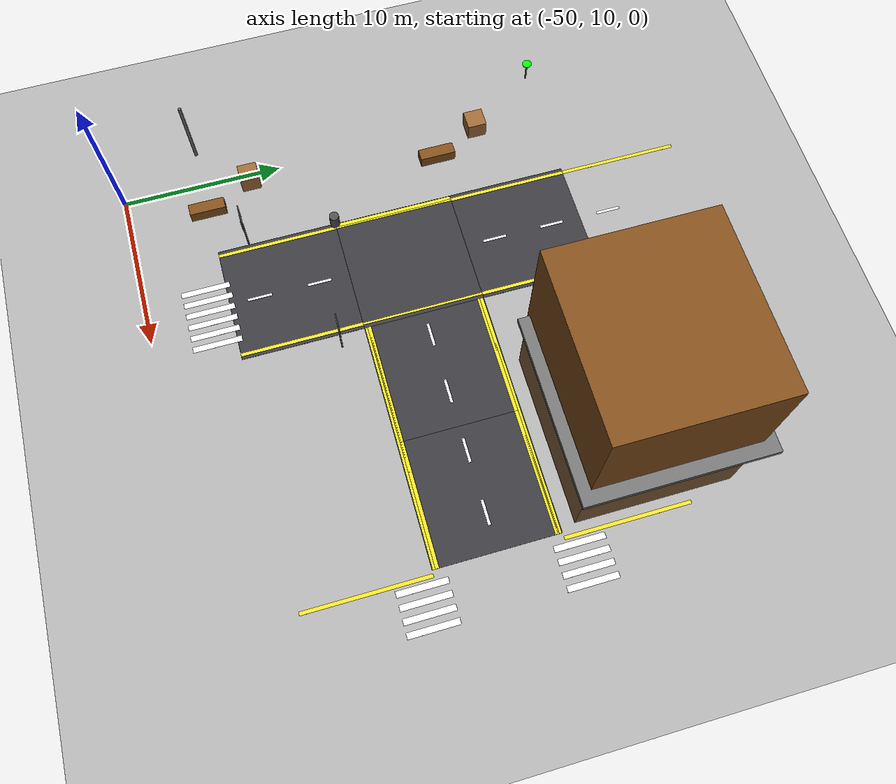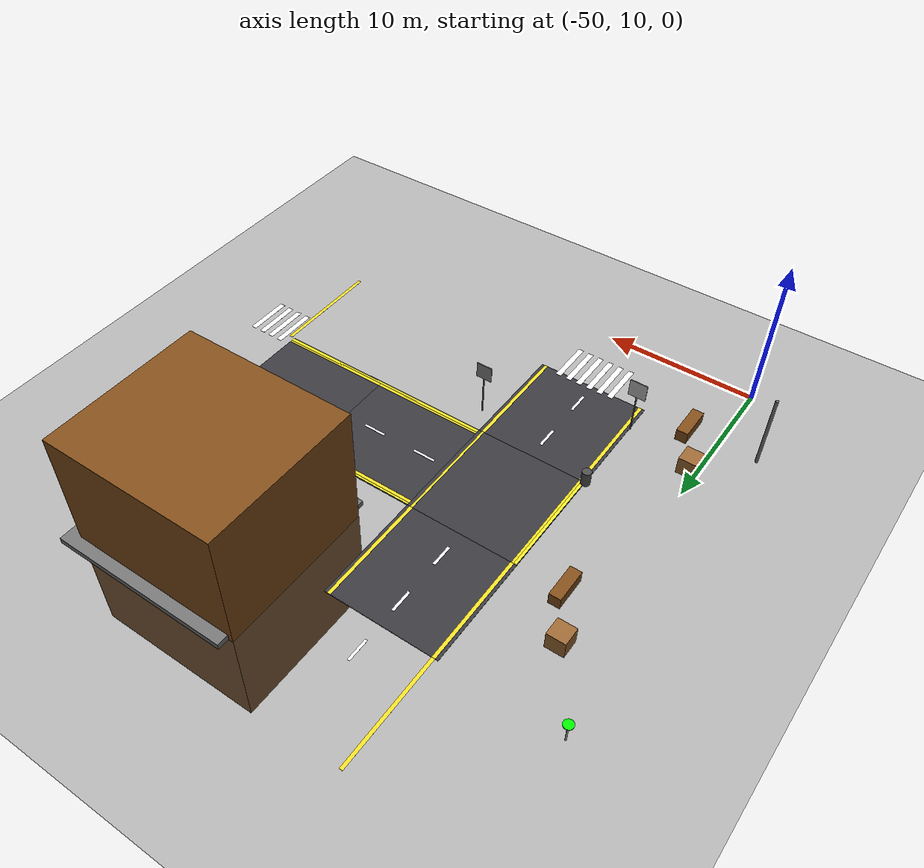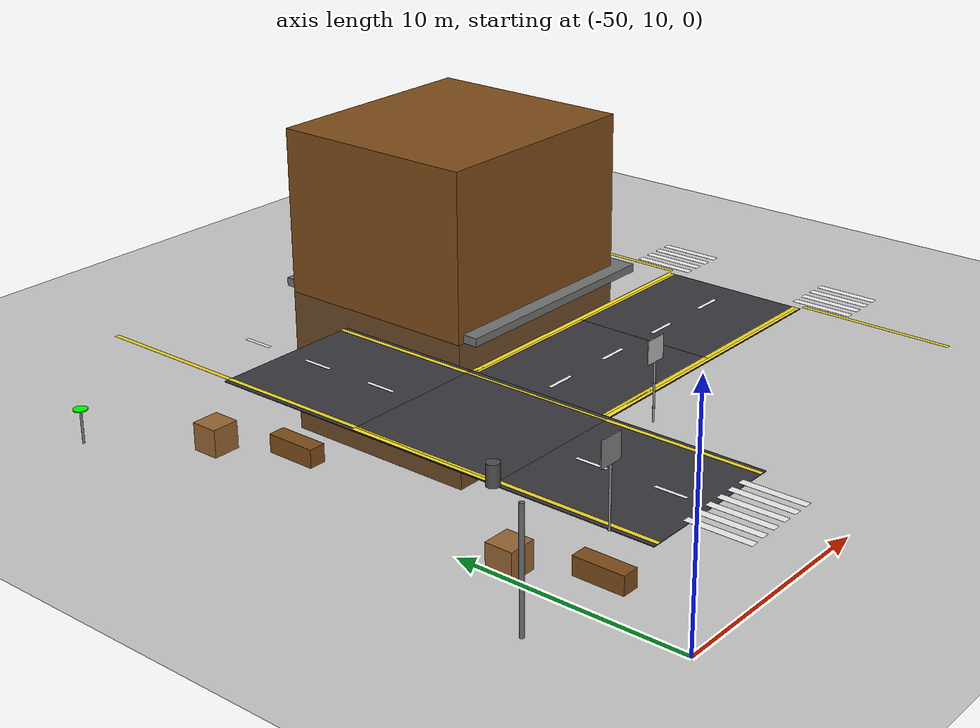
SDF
<sdf version="1.7">
 <world name="compact_city">
  <model name="ground_plane">
   <static>1</static>
   <pose>0 0 0.01 0 -0 0</pose>
   <link name="link">
    <collision name="collision">
     <geometry><plane><normal>0 0 1</normal><size>200 200</size></plane></geometry>
    </collision>
    <visual name="visual">
     <geometry><plane><normal>0 0 1</normal><size>200 200</size></plane></geometry>
     <material>
      <ambient>0.2 0.2 0.2 1</ambient>
      <diffuse>0.25 0.25 0.25 1</diffuse>
      <specular>0.1 0.1 0.1 1</specular>
     </material>
    </visual>
   </link>
  </model>
  <model name="road_tile_17">
   <static>1</static>
   <pose>-41.25 33.75 0.015 0 -0 1.5708</pose>
   <link name="link">
    <collision name="collision"><geometry><box><size>7.5 7.5 0.03</size></box></geometry></collision>
    <visual name="visual">
     <geometry><box><size>7.5 7.5 0.03</size></box></geometry>
     <material>
      <ambient>0.18 0.18 0.2 1</ambient>
      <diffuse>0.22 0.22 0.24 1</diffuse>
      <specular>0.1 0.1 0.1 1</specular>
     </material>
    </visual>
   </link>
  </model>
  <model name="road_tile_21">
   <static>1</static>
   <pose>-41.25 26.25 0.015 0 -0 0</pose>
   <link name="link">
    <collision name="collision"><geometry><box><size>7.5 7.5 0.03</size></box></geometry></collision>
    <visual name="visual">
     <geometry><box><size>7.5 7.5 0.03</size></box></geometry>
     <material>
      <ambient>0.18 0.18 0.2 1</ambient>
      <diffuse>0.22 0.22 0.24 1</diffuse>
      <specular>0.1 0.1 0.1 1</specular>
     </material>
    </visual>
   </link>
  </model>
  <model name="road_tile_22">
   <static>1</static>
   <pose>-33.75 26.25 0.015 0 -0 0</pose>
   <link name="link">
    <collision name="collision"><geometry><box><size>7.5 7.5 0.03</size></box></geometry></collision>
    <visual name="visual">
     <geometry><box><size>7.5 7.5 0.03</size></box></geometry>
     <material>
      <ambient>0.18 0.18 0.2 1</ambient>
      <diffuse>0.22 0.22 0.24 1</diffuse>
      <specular>0.1 0.1 0.1 1</specular>
     </material>
    </visual>
   </link>
  </model>
  <model name="road_tile_23">
   <static>1</static>
   <pose>-26.25 26.25 0.015 0 -0 0</pose>
   <link name="link">
    <collision name="collision"><geometry><box><size>7.5 7.5 0.03</size></box></geometry></collision>
    <visual name="visual">
     <geometry><box><size>7.5 7.5 0.03</size></box></geometry>
     <material>
      <ambient>0.18 0.18 0.2 1</ambient>
      <diffuse>0.22 0.22 0.24 1</diffuse>
      <specular>0.1 0.1 0.1 1</specular>
     </material>
    </visual>
   </link>
  </model>
  <model name="road_tile_33">
   <static>1</static>
   <pose>-41.25 18.75 0.015 0 -0 1.5708</pose>
   <link name="link">
    <collision name="collision"><geometry><box><size>7.5 7.5 0.03</size></box></geometry></collision>
    <visual name="visual">
     <geometry><box><size>7.5 7.5 0.03</size></box></geometry>
     <material>
      <ambient>0.18 0.18 0.2 1</ambient>
      <diffuse>0.22 0.22 0.24 1</diffuse>
      <specular>0.1 0.1 0.1 1</specular>
     </material>
    </visual>
   </link>
  </model>
  <model name="sidewalk_area_top_left">
   <static>1</static>
   <pose>-29.4168 37.5 0.2 0 -0 0</pose>
   <link name="link">
    <collision name="collision"><geometry><box><size>12 12 0.4</size></box></geometry></collision>
    <visual name="visual">
     <geometry><box><size>12 12 0.4</size></box></geometry>
     <material>
      <ambient>0.4 0.4 0.4 1</ambient>
      <diffuse>0.45 0.45 0.45 1</diffuse>
      <specular>0.2 0.2 0.2 1</specular>
     </material>
    </visual>
   </link>
  </model>
  <model name="el_141">
   <static>1</static>
   <pose>-44.7 18.75 0.038 0 -0 1.5708</pose>
   <link name="link">
    <visual name="v">
     <geometry><box><size>7.5 0.225 0.002</size></box></geometry>
     <material><ambient>0.9 0.8 0.1 1</ambient><diffuse>0.95 0.85 0.15 1</diffuse></material>
    </visual>
   </link>
  </model>
  <model name="el_142">
   <static>1</static>
   <pose>-37.8 18.75 0.038 0 -0 1.5708</pose>
   <link name="link">
    <visual name="v">
     <geometry><box><size>7.5 0.225 0.002</size></box></geometry>
     <material><ambient>0.9 0.8 0.1 1</ambient><diffuse>0.95 0.85 0.15 1</diffuse></material>
    </visual>
   </link>
  </model>
  <model name="el_143">
   <static>1</static>
   <pose>-44.7 33.75 0.038 0 -0 1.5708</pose>
   <link name="link">
    <visual name="v">
     <geometry><box><size>7.5 0.225 0.002</size></box></geometry>
     <material><ambient>0.9 0.8 0.1 1</ambient><diffuse>0.95 0.85 0.15 1</diffuse></material>
    </visual>
   </link>
  </model>
  <model name="el_144">
   <static>1</static>
   <pose>-37.8 33.75 0.038 0 -0 1.5708</pose>
   <link name="link">
    <visual name="v">
     <geometry><box><size>7.5 0.225 0.002</size></box></geometry>
     <material><ambient>0.9 0.8 0.1 1</ambient><diffuse>0.95 0.85 0.15 1</diffuse></material>
    </visual>
   </link>
  </model>
  <model name="el_145">
   <static>1</static>
   <pose>-44.7 41.25 0.038 0 -0 1.5708</pose>
   <link name="link">
    <visual name="v">
     <geometry><box><size>7.5 0.225 0.002</size></box></geometry>
     <material><ambient>0.9 0.8 0.1 1</ambient><diffuse>0.95 0.85 0.15 1</diffuse></material>
    </visual>
   </link>
  </model>
  <model name="el_151">
   <static>1</static>
   <pose>-33.75 22.8 0.038 0 -0 0</pose>
   <link name="link">
    <visual name="v">
     <geometry><box><size>7.5 0.225 0.002</size></box></geometry>
     <material><ambient>0.9 0.8 0.1 1</ambient><diffuse>0.95 0.85 0.15 1</diffuse></material>
    </visual>
   </link>
  </model>
  <model name="el_152">
   <static>1</static>
   <pose>-33.75 29.7 0.038 0 -0 0</pose>
   <link name="link">
    <visual name="v">
     <geometry><box><size>7.5 0.225 0.002</size></box></geometry>
     <material><ambient>0.9 0.8 0.1 1</ambient><diffuse>0.95 0.85 0.15 1</diffuse></material>
    </visual>
   </link>
  </model>
  <model name="el_159">
   <static>1</static>
   <pose>-26.25 22.8 0.038 0 -0 0</pose>
   <link name="link">
    <visual name="v">
     <geometry><box><size>7.5 0.225 0.002</size></box></geometry>
     <material><ambient>0.9 0.8 0.1 1</ambient><diffuse>0.95 0.85 0.15 1</diffuse></material>
    </visual>
   </link>
  </model>
  <model name="el_160">
   <static>1</static>
   <pose>-26.25 29.7 0.038 0 -0 0</pose>
   <link name="link">
    <visual name="v">
     <geometry><box><size>7.5 0.225 0.002</size></box></geometry>
     <material><ambient>0.9 0.8 0.1 1</ambient><diffuse>0.95 0.85 0.15 1</diffuse></material>
    </visual>
   </link>
  </model>
  <model name="el_173">
   <static>1</static>
   <pose>-22.2 18.75 0.038 0 -0 1.5708</pose>
   <link name="link">
    <visual name="v">
     <geometry><box><size>7.5 0.225 0.002</size></box></geometry>
     <material><ambient>0.9 0.8 0.1 1</ambient><diffuse>0.95 0.85 0.15 1</diffuse></material>
    </visual>
   </link>
  </model>
  <model name="el_175">
   <static>1</static>
   <pose>-22.2 33.75 0.038 0 -0 1.5708</pose>
   <link name="link">
    <visual name="v">
     <geometry><box><size>7.5 0.225 0.002</size></box></geometry>
     <material><ambient>0.9 0.8 0.1 1</ambient><diffuse>0.95 0.85 0.15 1</diffuse></material>
    </visual>
   </link>
  </model>
  <model name="ld_11">
   <static>1</static>
   <pose>-41.25 16.875 0.038 0 -0 1.5708</pose>
   <link name="link">
    <visual name="v">
     <geometry><box><size>1.5 0.18 0.002</size></box></geometry>
     <material><ambient>1 1 1 1</ambient><diffuse>0.95 0.95 0.95 1</diffuse></material>
    </visual>
   </link>
  </model>
  <model name="ld_12">
   <static>1</static>
   <pose>-41.25 20.625 0.038 0 -0 1.5708</pose>
   <link name="link">
    <visual name="v">
     <geometry><box><size>1.5 0.18 0.002</size></box></geometry>
     <material><ambient>1 1 1 1</ambient><diffuse>0.95 0.95 0.95 1</diffuse></material>
    </visual>
   </link>
  </model>
  <model name="ld_13">
   <static>1</static>
   <pose>-41.25 31.875 0.038 0 -0 1.5708</pose>
   <link name="link">
    <visual name="v">
     <geometry><box><size>1.5 0.18 0.002</size></box></geometry>
     <material><ambient>1 1 1 1</ambient><diffuse>0.95 0.95 0.95 1</diffuse></material>
    </visual>
   </link>
  </model>
  <model name="ld_14">
   <static>1</static>
   <pose>-41.25 35.625 0.038 0 -0 1.5708</pose>
   <link name="link">
    <visual name="v">
     <geometry><box><size>1.5 0.18 0.002</size></box></geometry>
     <material><ambient>1 1 1 1</ambient><diffuse>0.95 0.95 0.95 1</diffuse></material>
    </visual>
   </link>
  </model>
  <model name="ld_15">
   <static>1</static>
   <pose>-41.25 39.375 0.038 0 -0 1.5708</pose>
   <link name="link">
    <visual name="v">
     <geometry><box><size>1.5 0.18 0.002</size></box></geometry>
     <material><ambient>1 1 1 1</ambient><diffuse>0.95 0.95 0.95 1</diffuse></material>
    </visual>
   </link>
  </model>
  <model name="ld_85">
   <static>1</static>
   <pose>-36 26.25 0.038 0 -0 0</pose>
   <link name="link">
    <visual name="v">
     <geometry><box><size>1.5 0.18 0.002</size></box></geometry>
     <material><ambient>1 1 1 1</ambient><diffuse>0.95 0.95 0.95 1</diffuse></material>
    </visual>
   </link>
  </model>
  <model name="ld_86">
   <static>1</static>
   <pose>-32.25 26.25 0.038 0 -0 0</pose>
   <link name="link">
    <visual name="v">
     <geometry><box><size>1.5 0.18 0.002</size></box></geometry>
     <material><ambient>1 1 1 1</ambient><diffuse>0.95 0.95 0.95 1</diffuse></material>
    </visual>
   </link>
  </model>
  <model name="ld_87">
   <static>1</static>
   <pose>-28.5 26.25 0.038 0 -0 0</pose>
   <link name="link">
    <visual name="v">
     <geometry><box><size>1.5 0.18 0.002</size></box></geometry>
     <material><ambient>1 1 1 1</ambient><diffuse>0.95 0.95 0.95 1</diffuse></material>
    </visual>
   </link>
  </model>
  <model name="ld_88">
   <static>1</static>
   <pose>-24.75 26.25 0.038 0 -0 0</pose>
   <link name="link">
    <visual name="v">
     <geometry><box><size>1.5 0.18 0.002</size></box></geometry>
     <material><ambient>1 1 1 1</ambient><diffuse>0.95 0.95 0.95 1</diffuse></material>
    </visual>
   </link>
  </model>
  <model name="ie_274">
   <static>1</static>
   <pose>-44.7 26.25 0.038 0 -0 1.5708</pose>
   <link name="link">
    <visual name="v">
     <geometry><box><size>7.5 0.15 0.002</size></box></geometry>
     <material><ambient>0.9 0.8 0.1 1</ambient><diffuse>0.95 0.85 0.15 1</diffuse></material>
    </visual>
   </link>
  </model>
  <model name="ie_275">
   <static>1</static>
   <pose>-37.8 26.25 0.038 0 -0 1.5708</pose>
   <link name="link">
    <visual name="v">
     <geometry><box><size>7.5 0.15 0.002</size></box></geometry>
     <material><ambient>0.9 0.8 0.1 1</ambient><diffuse>0.95 0.85 0.15 1</diffuse></material>
    </visual>
   </link>
  </model>
  <model name="xwalk_yolo_no_light_left_00">
   <static>1</static>
   <pose>-41.875 13.8 0.038 0 -0 1.5708</pose>
   <link name="link">
    <visual name="visual">
     <geometry><box><size>3 0.375 0.002</size></box></geometry>
     <material><ambient>1 1 1 1</ambient><diffuse>0.95 0.95 0.95 1</diffuse></material>
    </visual>
   </link>
  </model>
  <model name="xwalk_yolo_no_light_left_01">
   <static>1</static>
   <pose>-41.125 13.8 0.038 0 -0 1.5708</pose>
   <link name="link">
    <visual name="visual">
     <geometry><box><size>3 0.375 0.002</size></box></geometry>
     <material><ambient>1 1 1 1</ambient><diffuse>0.95 0.95 0.95 1</diffuse></material>
    </visual>
   </link>
  </model>
  <model name="xwalk_yolo_no_light_left_02">
   <static>1</static>
   <pose>-40.375 13.8 0.038 0 -0 1.5708</pose>
   <link name="link">
    <visual name="visual">
     <geometry><box><size>3 0.375 0.002</size></box></geometry>
     <material><ambient>1 1 1 1</ambient><diffuse>0.95 0.95 0.95 1</diffuse></material>
    </visual>
   </link>
  </model>
  <model name="xwalk_yolo_no_light_left_03">
   <static>1</static>
   <pose>-39.625 13.8 0.038 0 -0 1.5708</pose>
   <link name="link">
    <visual name="visual">
     <geometry><box><size>3 0.375 0.002</size></box></geometry>
     <material><ambient>1 1 1 1</ambient><diffuse>0.95 0.95 0.95 1</diffuse></material>
    </visual>
   </link>
  </model>
  <model name="xwalk_yolo_no_light_left_04">
   <static>1</static>
   <pose>-38.875 13.8 0.038 0 -0 1.5708</pose>
   <link name="link">
    <visual name="visual">
     <geometry><box><size>3 0.375 0.002</size></box></geometry>
     <material><ambient>1 1 1 1</ambient><diffuse>0.95 0.95 0.95 1</diffuse></material>
    </visual>
   </link>
  </model>
  <model name="yolo_traffic_sign_pedestrian_crossing_no_light">
   <static>1</static>
   <pose>-45.028 16.9781 0 0 -0 3.12687</pose>
   <link name="link">
    <collision name="pole_collision">
     <pose>0 0 1.35 0 -0 0</pose>
     <geometry><cylinder><radius>0.045</radius><length>2.7</length></cylinder></geometry>
    </collision>
    <visual name="pole_visual">
     <pose>0 0 1.35 0 -0 0</pose>
     <geometry><cylinder><radius>0.045</radius><length>2.7</length></cylinder></geometry>
     <material><ambient>0.45 0.45 0.45 1</ambient><diffuse>0.55 0.55 0.55 1</diffuse></material>
    </visual>
    <collision name="panel_collision">
     <pose>0 0 3.275 0 -0 0</pose>
     <geometry><box><size>1.15 0.045 1.15</size></box></geometry>
    </collision>
    <visual name="panel_back_visual">
     <pose>0 0 3.275 0 -0 0</pose>
     <geometry><box><size>1.15 0.045 1.15</size></box></geometry>
     <material><ambient>0.42 0.42 0.42 1</ambient><diffuse>0.5 0.5 0.5 1</diffuse></material>
    </visual>
    <visual name="panel_front_visual">
     <pose>0 -0.026 3.275 0 -0 0</pose>
     <geometry><box><size>1.15 0.006 1.15</size></box></geometry>
     <material>
      <script>
       <uri>file:///home/ranim/autoCar_ws/models/traffic_sign_assets/materials/scripts</uri>
       <uri>file:///home/ranim/autoCar_ws/models/traffic_sign_assets/materials/textures</uri>
       <name>TrafficSigns/WarningPedestrian</name>
      </script>
     </material>
    </visual>
   </link>
  </model>
  <model name="yolo_traffic_sign_no_right_west_middle">
   <static>1</static>
   <pose>-36.6758 20.9339 0 0 -0 0</pose>
   <link name="link">
    <collision name="pole_collision">
     <pose>0 0 1.35 0 -0 0</pose>
     <geometry><cylinder><radius>0.045</radius><length>2.7</length></cylinder></geometry>
    </collision>
    <visual name="pole_visual">
     <pose>0 0 1.35 0 -0 0</pose>
     <geometry><cylinder><radius>0.045</radius><length>2.7</length></cylinder></geometry>
     <material><ambient>0.45 0.45 0.45 1</ambient><diffuse>0.55 0.55 0.55 1</diffuse></material>
    </visual>
    <collision name="panel_collision">
     <pose>0 0 3.225 0 -0 0</pose>
     <geometry><box><size>1.05 0.045 1.05</size></box></geometry>
    </collision>
    <visual name="panel_back_visual">
     <pose>0 0 3.225 0 -0 0</pose>
     <geometry><box><size>1.05 0.045 1.05</size></box></geometry>
     <material><ambient>0.42 0.42 0.42 1</ambient><diffuse>0.5 0.5 0.5 1</diffuse></material>
    </visual>
    <visual name="panel_front_visual">
     <pose>0 -0.026 3.225 0 -0 0</pose>
     <geometry><box><size>1.05 0.006 1.05</size></box></geometry>
     <material>
      <script>
       <uri>file:///home/ranim/autoCar_ws/models/traffic_sign_assets/materials/scripts</uri>
       <uri>file:///home/ranim/autoCar_ws/models/traffic_sign_assets/materials/textures</uri>
       <name>TrafficSigns/NoRightTurn</name>
      </script>
     </material>
    </visual>
   </link>
  </model>
  <model name="bench_1">
   <static>1</static>
   <pose>-30 37.5 0.4 0 -0 0</pose>
   <link name="link">
    <collision name="collision"><geometry><box><size>11.4396 10.4796 15.4778</size></box></geometry></collision>
    <visual name="visual">
     <geometry><box><size>11.4396 10.4796 15.4778</size></box></geometry>
     <material><ambient>0.5 0.3 0.1 1</ambient><diffuse>0.5 0.3 0.1 1</diffuse></material>
    </visual>
   </link>
  </model>
  <model name="bench_4">
   <static>1</static>
   <pose>-48 30 0.4 0 -0 1.57</pose>
   <link name="link">
    <collision name="collision"><geometry><box><size>2.25 0.75 0.8</size></box></geometry></collision>
    <visual name="visual">
     <geometry><box><size>2.25 0.75 0.8</size></box></geometry>
     <material><ambient>0.5 0.3 0.1 1</ambient><diffuse>0.5 0.3 0.1 1</diffuse></material>
    </visual>
   </link>
  </model>
  <model name="bench_5">
   <static>1</static>
   <pose>-48 15 0.4 0 -0 1.57</pose>
   <link name="link">
    <collision name="collision"><geometry><box><size>2.25 0.75 0.8</size></box></geometry></collision>
    <visual name="visual">
     <geometry><box><size>2.25 0.75 0.8</size></box></geometry>
     <material><ambient>0.5 0.3 0.1 1</ambient><diffuse>0.5 0.3 0.1 1</diffuse></material>
    </visual>
   </link>
  </model>
  <model name="bin_5">
   <static>1</static>
   <pose>-45 22.5 0.5 0 -0 0</pose>
   <link name="link">
    <collision name="collision">
     <geometry><cylinder><radius>0.3</radius><length>1</length></cylinder></geometry>
    </collision>
    <visual name="visual">
     <geometry><cylinder><radius>0.3</radius><length>1</length></cylinder></geometry>
     <material><ambient>0.2 0.2 0.2 1</ambient><diffuse>0.3 0.3 0.3 1</diffuse></material>
    </visual>
   </link>
  </model>
  <model name="sign_5">
   <static>1</static>
   <pose>-52.5 37.5 1.5 0 -0 1.57</pose>
   <link name="link">
    <collision name="collision">
     <geometry><cylinder><radius>0.3</radius><length>0.05</length></cylinder></geometry>
    </collision>
    <visual name="visual">
     <geometry><cylinder><radius>0.3</radius><length>0.05</length></cylinder></geometry>
     <material><ambient>0 1 0 1</ambient><diffuse>0 1 0 1</diffuse></material>
    </visual>
    <collision name="pole_col">
     <pose>0 0 -0.75 0 -0 0</pose>
     <geometry><cylinder><radius>0.05</radius><length>1.5</length></cylinder></geometry>
    </collision>
    <visual name="pole">
     <pose>0 0 -0.75 0 -0 0</pose>
     <geometry><cylinder><radius>0.05</radius><length>1.5</length></cylinder></geometry>
     <material><ambient>0.5 0.5 0.5 1</ambient><diffuse>0.5 0.5 0.5 1</diffuse></material>
    </visual>
   </link>
  </model>
  <model name="pole_6">
   <static>1</static>
   <pose>-52.5 15 2.5 0 -0 0</pose>
   <link name="link">
    <collision name="collision">
     <geometry><cylinder><radius>0.1</radius><length>5</length></cylinder></geometry>
    </collision>
    <visual name="visual">
     <geometry><cylinder><radius>0.1</radius><length>5</length></cylinder></geometry>
     <material><ambient>0.3 0.3 0.3 1</ambient><diffuse>0.4 0.4 0.4 1</diffuse></material>
    </visual>
   </link>
  </model>
  <model name="box_1">
   <static>1</static>
   <pose>-49.5 33 0.6 0 -0 0</pose>
   <link name="link">
    <collision name="collision"><geometry><box><size>1.2 1.2 1.2</size></box></geometry></collision>
    <visual name="visual">
     <geometry><box><size>1.2 1.2 1.2</size></box></geometry>
     <material><ambient>0.6 0.4 0.2 1</ambient><diffuse>0.6 0.4 0.2 1</diffuse></material>
    </visual>
   </link>
  </model>
  <model name="box_2">
   <static>1</static>
   <pose>-49.5 18 0.6 0 -0 0</pose>
   <link name="link">
    <collision name="collision"><geometry><box><size>1.2 1.2 1.2</size></box></geometry></collision>
    <visual name="visual">
     <geometry><box><size>1.2 1.2 1.2</size></box></geometry>
     <material><ambient>0.6 0.4 0.2 1</ambient><diffuse>0.6 0.4 0.2 1</diffuse></material>
    </visual>
   </link>
  </model>
  <model name="edge_h_7">
   <static>1</static>
   <pose>-30 22.65 0.038 0 -0 0</pose>
   <link name="link">
    <visual name="visual">
     <geometry><box><size>15 0.225 0.002</size></box></geometry>
     <material><ambient>0.95 0.85 0.1 1</ambient><diffuse>1 0.9 0.15 1</diffuse></material>
    </visual>
   </link>
  </model>
  <model name="edge_h_8">
   <static>1</static>
   <pose>-30 29.85 0.038 0 -0 0</pose>
   <link name="link">
    <visual name="visual">
     <geometry><box><size>15 0.225 0.002</size></box></geometry>
     <material><ambient>0.95 0.85 0.1 1</ambient><diffuse>1 0.9 0.15 1</diffuse></material>
    </visual>
   </link>
  </model>
  <model name="tedge_493">
   <static>1</static>
   <pose>-44.85 26.25 0.038 0 -0 1.5708</pose>
   <link name="link">
    <visual name="visual">
     <geometry><box><size>7.5 0.225 0.002</size></box></geometry>
     <material><ambient>0.95 0.85 0.1 1</ambient><diffuse>1 0.9 0.15 1</diffuse></material>
    </visual>
   </link>
  </model>
  <model name="xwalk_573">
   <static>1</static>
   <pose>-21.75 30.75 0.038 0 -0 1.5708</pose>
   <link name="link">
    <visual name="visual">
     <geometry><box><size>3 0.375 0.002</size></box></geometry>
     <material><ambient>1 1 1 1</ambient><diffuse>0.95 0.95 0.95 1</diffuse></material>
    </visual>
   </link>
  </model>
  <model name="xwalk_574">
   <static>1</static>
   <pose>-21 30.75 0.038 0 -0 1.5708</pose>
   <link name="link">
    <visual name="visual">
     <geometry><box><size>3 0.375 0.002</size></box></geometry>
     <material><ambient>1 1 1 1</ambient><diffuse>0.95 0.95 0.95 1</diffuse></material>
    </visual>
   </link>
  </model>
  <model name="xwalk_575">
   <static>1</static>
   <pose>-20.25 30.75 0.038 0 -0 1.5708</pose>
   <link name="link">
    <visual name="visual">
     <geometry><box><size>3 0.375 0.002</size></box></geometry>
     <material><ambient>1 1 1 1</ambient><diffuse>0.95 0.95 0.95 1</diffuse></material>
    </visual>
   </link>
  </model>
  <model name="xwalk_576">
   <static>1</static>
   <pose>-19.5 30.75 0.038 0 -0 1.5708</pose>
   <link name="link">
    <visual name="visual">
     <geometry><box><size>3 0.375 0.002</size></box></geometry>
     <material><ambient>1 1 1 1</ambient><diffuse>0.95 0.95 0.95 1</diffuse></material>
    </visual>
   </link>
  </model>
  <model name="xwalk_582">
   <static>1</static>
   <pose>-21.75 21.75 0.038 0 -0 1.5708</pose>
   <link name="link">
    <visual name="visual">
     <geometry><box><size>3 0.375 0.002</size></box></geometry>
     <material><ambient>1 1 1 1</ambient><diffuse>0.95 0.95 0.95 1</diffuse></material>
    </visual>
   </link>
  </model>
  <model name="xwalk_583">
   <static>1</static>
   <pose>-21 21.75 0.038 0 -0 1.5708</pose>
   <link name="link">
    <visual name="visual">
     <geometry><box><size>3 0.375 0.002</size></box></geometry>
     <material><ambient>1 1 1 1</ambient><diffuse>0.95 0.95 0.95 1</diffuse></material>
    </visual>
   </link>
  </model>
  <model name="xwalk_584">
   <static>1</static>
   <pose>-20.25 21.75 0.038 0 -0 1.5708</pose>
   <link name="link">
    <visual name="visual">
     <geometry><box><size>3 0.375 0.002</size></box></geometry>
     <material><ambient>1 1 1 1</ambient><diffuse>0.95 0.95 0.95 1</diffuse></material>
    </visual>
   </link>
  </model>
  <model name="xwalk_585">
   <static>1</static>
   <pose>-19.5 21.75 0.038 0 -0 1.5708</pose>
   <link name="link">
    <visual name="visual">
     <geometry><box><size>3 0.375 0.002</size></box></geometry>
     <material><ambient>1 1 1 1</ambient><diffuse>0.95 0.95 0.95 1</diffuse></material>
    </visual>
   </link>
  </model>
  <model name="xwalk_yolo_no_light_left_00_clone">
   <static>1</static>
   <pose>-42.6227 13.7738 0.038 0 -0 1.5708</pose>
   <link name="link">
    <visual name="visual">
     <geometry><box><size>3 0.375 0.002</size></box></geometry>
     <material><ambient>1 1 1 1</ambient><diffuse>0.95 0.95 0.95 1</diffuse></material>
    </visual>
   </link>
  </model>
 </world>
</sdf>
